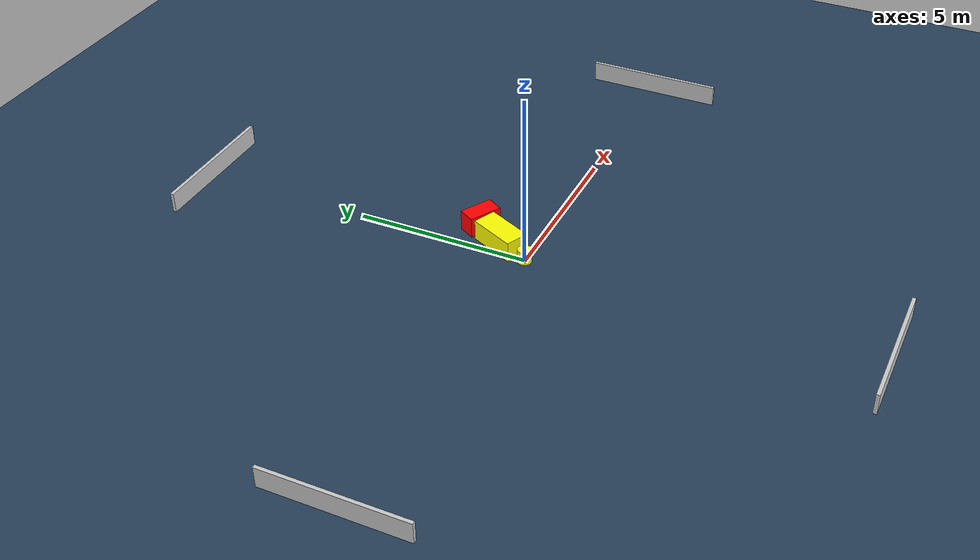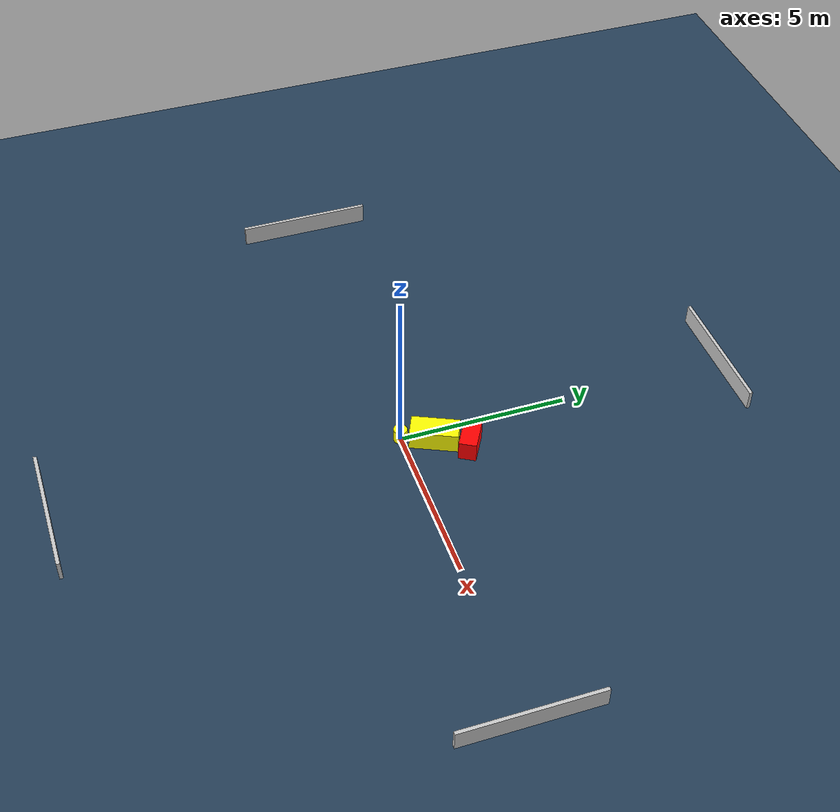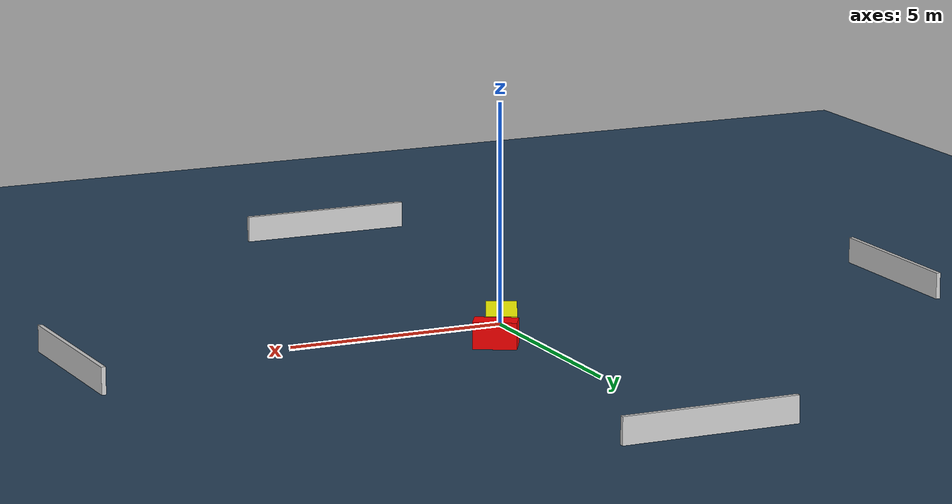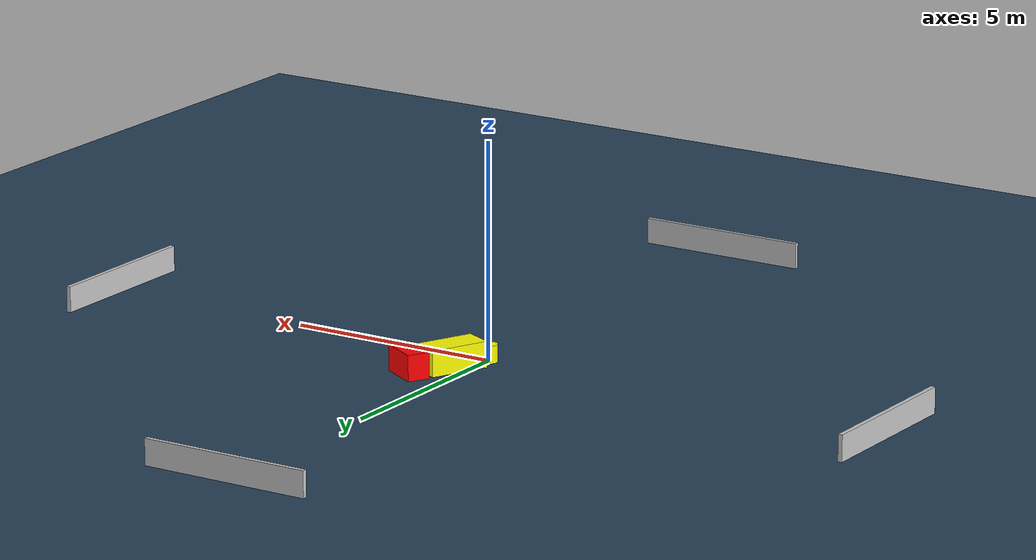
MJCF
<?xml version="1.0" ?>
<mujoco model="generated_environment">
  <option timestep="0.01" integrator="RK4" cone="elliptic"/>
  <default>
    <geom density="1"/>
  </default>
  <asset>
    <texture builtin="gradient" height="3072" name="skybox" rgb1="0.3 0.5 0.7" rgb2="0 0 0" type="skybox" width="512"/>
    <texture builtin="checker" height="300" name="groundplane" rgb1="0.2 0.3 0.4" rgb2="0.1 0.2 0.3" type="2d" width="300"/>
    <material name="groundplane" reflectance="0.2" texrepeat="5 5" texture="groundplane"/>
  </asset>
  <worldbody>
    <light dir="0 0 -1" directional="true" pos="0 0 1.5"/>
    <geom condim="3" friction="0.5 0.005 0.001" material="groundplane" name="floor" pos="0 0 0" size="0 0 0.05" type="plane"/>
    <body name="walls">
      <geom name="wall_1" condim="4" pos="-10.0 0.0 0.3" rgba="0.800000011920929 0.800000011920929 0.800000011920929 1.0" size="0.05 2.0 0.3" type="box"/>
      <geom name="wall_2" condim="4" pos="10.0 0.0 0.3" rgba="0.800000011920929 0.800000011920929 0.800000011920929 1.0" size="0.05 2.0 0.3" type="box"/>
      <geom name="wall_3" condim="4" pos="0.0 -10.0 0.3" rgba="0.800000011920929 0.800000011920929 0.800000011920929 1.0" size="2.0 0.05 0.3" type="box"/>
      <geom name="wall_4" condim="4" pos="0.0 10.0 0.3" rgba="0.800000011920929 0.800000011920929 0.800000011920929 1.0" size="2.0 0.05 0.3" type="box"/>
    </body>
    <body name="robot">
      <joint name="joint_x" type="slide" pos="0 0 0" axis="1 0 0"/>
      <joint name="joint_y" type="slide" pos="0 0 0" axis="0 1 0"/>
      <geom name="robot" type="cylinder" pos="0.0 0.0 0.2" size="0.2 0.2 0.0" mass="5.0" friction="1.0 0.005 0.0001" condim="4" rgba="1.0 1.0 0.0 1.0"/>
    </body>
    <body name="obstacle_1_movable">
      <geom name="obstacle_1_movable" condim="4" pos="0.3868976319316311 0.8939344790396667 0.3" euler="0 0 245.1885313644254" friction="0.0 0.005 0.001" rgba="1.0 1.0 0.0 1.0" size="0.6992822891456478 0.34138271751087435 0.3" type="box" mass="0.1"/>
      <joint type="free"/>
    </body>
    <body name="obstacle_2_static">
      <geom name="obstacle_2_static" condim="4" pos="0.9339077205966008 1.7660372098167316 0.3" euler="0 0 330.0252684296595" friction="0.0 0.005 0.001" rgba="1.0 0.0 0.0 1.0" size="0.4829476834906767 0.257338870242254 0.3" type="box"/>
    </body>
  </worldbody>
  <actuator>
    <motor name="actuator_x" joint="joint_x" gear="1" ctrlrange="-1 1"/>
    <motor name="actuator_y" joint="joint_y" gear="1" ctrlrange="-1 1"/>
  </actuator>
</mujoco>
